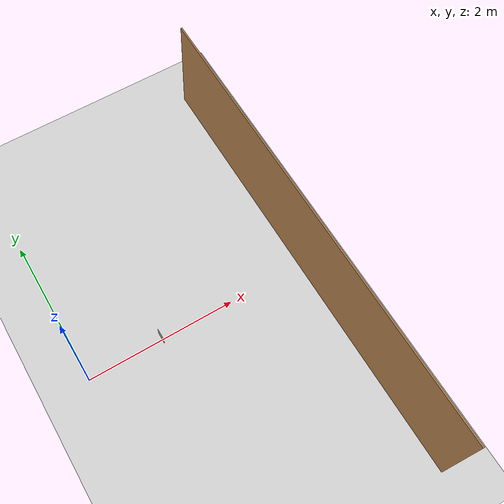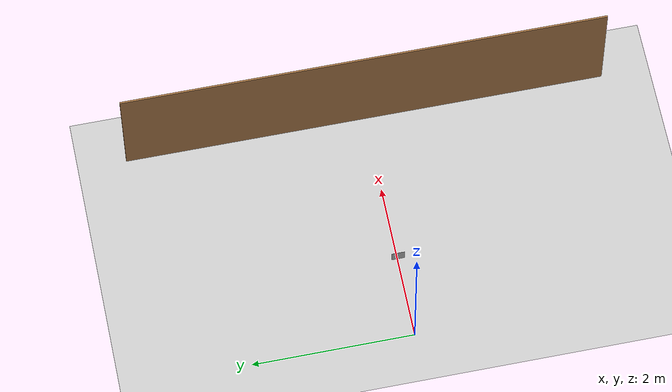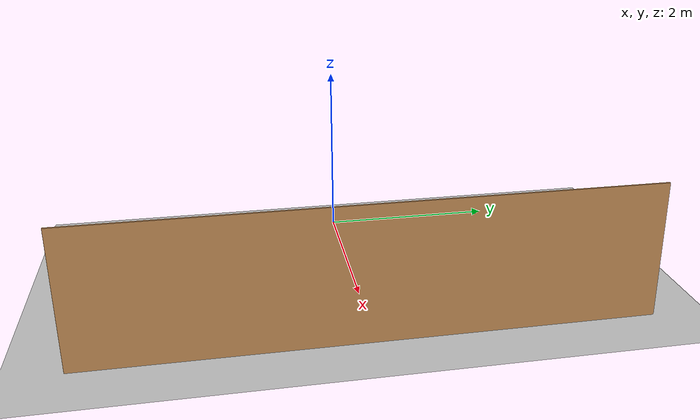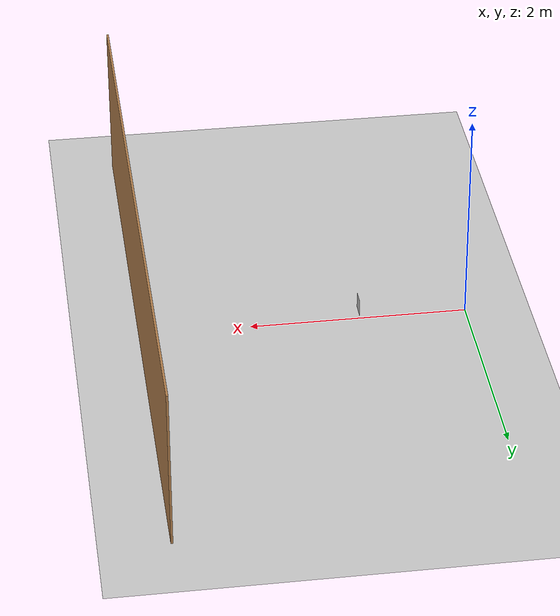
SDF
<sdf version="1.6">
 <world name="default">
  <light name="sun" type="directional">
   <pose>0 0 10 0 -0 0</pose>
   <diffuse>0.8 0.8 0.8 1</diffuse>
   <specular>0.2 0.2 0.2 1</specular>
   <attenuation>
    <range>1000</range>
    <constant>0.9</constant>
    <linear>0.01</linear>
    <quadratic>0.001</quadratic>
   </attenuation>
   <direction>-0.5 0.1 -0.9</direction>
  </light>
  <model name="ground_plane">
   <static>1</static>
   <link name="link">
    <collision name="collision">
     <geometry><plane><normal>0 0 1</normal><size>100 100</size></plane></geometry>
     <surface><friction><ode><mu>100</mu><mu2>50</mu2></ode></friction></surface>
    </collision>
    <visual name="visual">
     <cast_shadows>0</cast_shadows>
     <geometry><plane><normal>0 0 1</normal><size>100 100</size></plane></geometry>
     <material>
      <script><uri>file://media/materials/scripts/gazebo.material</uri><name>Gazebo/Grey</name></script>
     </material>
    </visual>
   </link>
  </model>
  <gravity>0 0 -9.8</gravity>
  <magnetic_field>6e-06 2.3e-05 -4.2e-05</magnetic_field>
  <atmosphere type="adiabatic"/>
  <physics name="default_physics" default="0" type="ode">
   <max_step_size>0.001</max_step_size>
   <real_time_factor>1</real_time_factor>
   <real_time_update_rate>1000</real_time_update_rate>
  </physics>
  <scene><ambient>0.4 0.4 0.4 1</ambient><background>0.7 0.7 0.7 1</background><shadows>1</shadows></scene>
  <audio><device>default</device></audio>
  <spherical_coordinates>
   <surface_model>EARTH_WGS84</surface_model>
   <latitude_deg>0</latitude_deg>
   <longitude_deg>0</longitude_deg>
   <elevation>0</elevation>
   <heading_deg>0</heading_deg>
  </spherical_coordinates>
  <model name="wall_1">
   <pose>3.02 0 0 0 -0 1.5708</pose>
   <link name="Wall_0">
    <collision name="Wall_0_Collision">
     <geometry><box><size>6 0.02 1.5</size></box></geometry>
     <pose>0 0 0.75 0 -0 0</pose>
    </collision>
    <visual name="Wall_0_Visual">
     <pose>0 0 0.75 0 -0 0</pose>
     <geometry><box><size>6 0.02 1.5</size></box></geometry>
     <material>
      <script><uri>file://media/materials/scripts/gazebo.material</uri><name>Gazebo/Wood</name></script>
      <ambient>1 1 1 1</ambient>
     </material>
     <meta><layer>0</layer></meta>
    </visual>
   </link>
   <static>1</static>
  </model>
  <model name="checkerboard">
   <link name="link_3">
    <inertial>
     <mass>1</mass>
     <inertia>
      <ixx>0.166667</ixx>
      <ixy>0</ixy>
      <ixz>0</ixz>
      <iyy>0.166667</iyy>
      <iyz>0</iyz>
      <izz>0.166667</izz>
     </inertia>
    </inertial>
    <visual name="visual">
     <geometry>
      <mesh>
       <uri>/home/tianbot/catkin_ws/src/graduate_design/target/calibration/board.dae</uri>
       <scale>1 1 1</scale>
      </mesh>
     </geometry>
     <material><lighting>1</lighting></material>
    </visual>
    <collision name="collision">
     <geometry>
      <mesh>
       <uri>/home/tianbot/catkin_ws/src/graduate_design/target/calibration/board.dae</uri>
       <scale>1 1 1</scale>
      </mesh>
     </geometry>
     <surface>
      <friction>
       <ode><mu>1</mu><mu2>1</mu2><fdir1>0 0 0</fdir1><slip1>0</slip1><slip2>0</slip2></ode>
       <torsional>
        <coefficient>1</coefficient>
        <patch_radius>0</patch_radius>
        <surface_radius>0</surface_radius>
        <use_patch_radius>1</use_patch_radius>
        <ode><slip>0</slip></ode>
       </torsional>
      </friction>
      <bounce><restitution_coefficient>0</restitution_coefficient><threshold>1e+06</threshold></bounce>
      <contact>
       <collide_without_contact>0</collide_without_contact>
       <collide_without_contact_bitmask>1</collide_without_contact_bitmask>
       <collide_bitmask>1</collide_bitmask>
       <ode>
        <soft_cfm>0</soft_cfm>
        <soft_erp>0.2</soft_erp>
        <kp>1e+13</kp>
        <kd>1</kd>
        <max_vel>0.01</max_vel>
        <min_depth>0</min_depth>
       </ode>
       <bullet>
        <split_impulse>1</split_impulse>
        <split_impulse_penetration_threshold>-0.01</split_impulse_penetration_threshold>
        <soft_cfm>0</soft_cfm>
        <soft_erp>0.2</soft_erp>
        <kp>1e+13</kp>
        <kd>1</kd>
       </bullet>
      </contact>
     </surface>
    </collision>
   </link>
   <static>1</static>
   <pose>1 0 0.16 3.14159 -1.57079 3.14159</pose>
  </model>
 </world>
</sdf>
